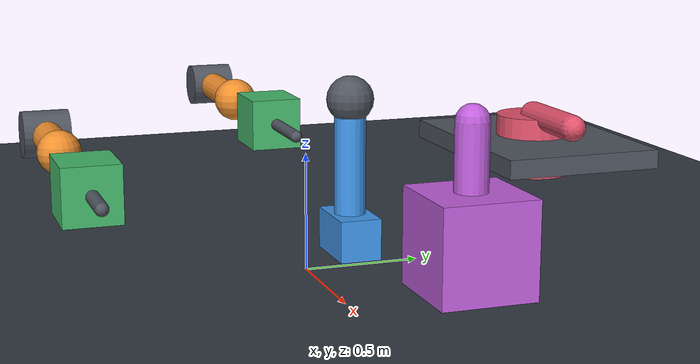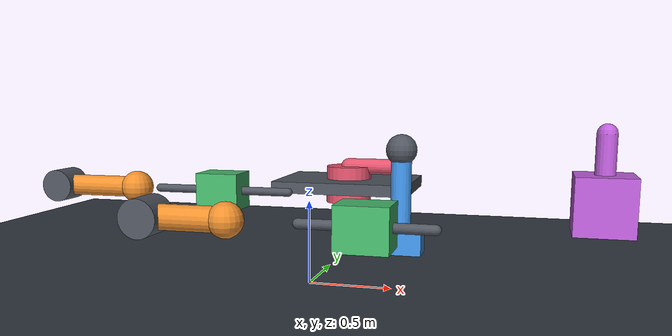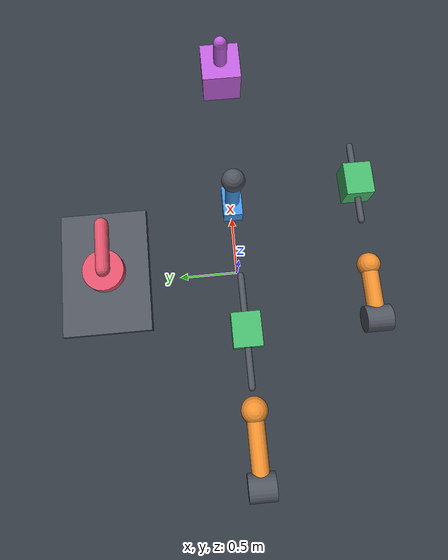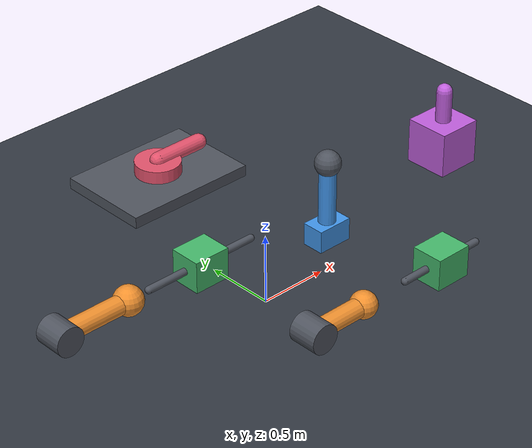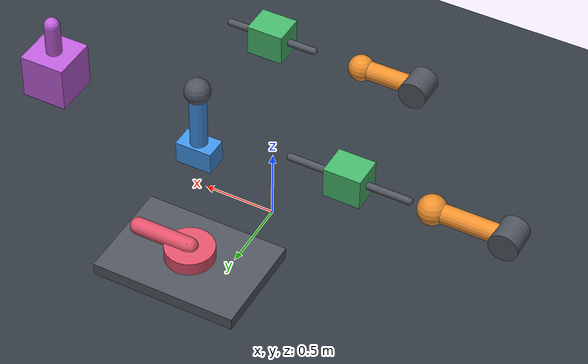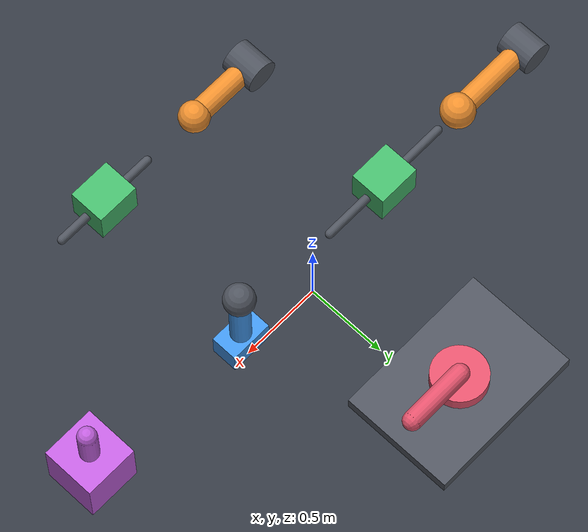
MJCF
<mujoco model="joint_gizmo_acceptance">
  <compiler angle="degree" autolimits="true"/>
  <option gravity="0 0 0"/>

  <visual>
    <headlight ambient="0.25 0.25 0.25" diffuse="0.55 0.55 0.55" specular="0.35 0.35 0.35"/>
    <quality shadowsize="2048" numslices="28" numstacks="16"/>
    <map znear="0.02" zfar="30"/>
  </visual>

  <asset>
    <texture name="floor_grid" type="2d" builtin="checker" width="512" height="512"
             rgb1="0.15 0.17 0.20" rgb2="0.24 0.27 0.31"/>
    <material name="floor_grid" texture="floor_grid" texrepeat="2 2" texuniform="true"/>
    <material name="anchor" rgba="0.31 0.33 0.37 1" specular="0.25" shininess="0.35"/>
    <material name="revolute" rgba="0.93 0.56 0.18 1" specular="0.45" shininess="0.55"/>
    <material name="prismatic" rgba="0.27 0.72 0.42 1" specular="0.45" shininess="0.55"/>
    <material name="ball" rgba="0.25 0.58 0.91 1" specular="0.45" shininess="0.55"/>
    <material name="free" rgba="0.75 0.37 0.86 1" specular="0.45" shininess="0.55"/>
    <material name="multi" rgba="0.88 0.32 0.42 1" specular="0.45" shininess="0.55"/>
  </asset>

  <worldbody>
    <light name="key" type="directional" pos="1 -3 6" dir="-0.15 0.35 -1"
           diffuse="0.75 0.75 0.75" specular="0.35 0.35 0.35" castshadow="true"/>
    <geom name="floor" type="plane" size="0 0 0.04" material="floor_grid"/>

    <!-- 01: select 01_revolute. Its one rotation axis must render as a full ring. -->
    <body name="01_revolute_anchor" pos="-1.65 0 0.55">
      <geom type="cylinder" size="0.10 0.10" euler="90 0 0" material="anchor"/>
      <body name="01_revolute">
        <joint name="01_revolute_y" type="hinge" axis="0 1 0" range="-120 120"/>
        <geom type="capsule" fromto="0 0 0 0.52 0 0" size="0.065" material="revolute"/>
        <geom type="sphere" pos="0.52 0 0" size="0.10" material="revolute"/>
      </body>
    </body>

    <!-- 02: select 02_prismatic. It exposes one arrow along the joint axis. -->
    <body name="02_prismatic_anchor" pos="-0.55 0 0.55">
      <geom type="capsule" fromto="-.42 0 0 .42 0 0" size="0.025" material="anchor"/>
      <body name="02_prismatic">
        <joint name="02_prismatic_x" type="slide" axis="1 0 0" range="-.34 .34"/>
        <geom type="box" size="0.13 0.11 0.11" material="prismatic"/>
      </body>
    </body>

    <!-- 03: select 03_ball. Its three overlapping axes retain front half-rings. -->
    <body name="03_ball_anchor" pos="0.55 0 0.82">
      <geom type="sphere" size="0.09" material="anchor"/>
      <body name="03_ball" pos="0 0 -0.22">
        <joint name="03_ball_xyz" type="ball"/>
        <geom type="capsule" fromto="0 0 .22 0 0 -.30" size="0.06" material="ball"/>
        <geom type="box" pos="0 0 -.30" size="0.13 0.08 0.08" material="ball"/>
      </body>
    </body>

    <!-- 04: select 04_free. It uses the regular translate/rotate transform gizmo. -->
    <body name="04_free" pos="1.65 0 0.55">
      <freejoint name="04_free_6dof"/>
      <geom type="box" size="0.16 0.16 0.16" material="free"/>
      <geom type="capsule" fromto="0 0 .16 0 0 .38" size="0.055" material="free"/>
    </body>

    <!-- 05: one body with three direct joints. Choose the active joint in the viewport picker. -->
    <body name="05_multi_anchor" pos="0 1.05 0.48">
      <geom type="box" size="0.48 0.34 0.04" material="anchor"/>
      <body name="05_multi_joint">
        <joint name="05_multi_slide_x" type="slide" axis="1 0 0" range="-.30 .30"/>
        <joint name="05_multi_slide_y" type="slide" axis="0 1 0" range="-.22 .22"/>
        <joint name="05_multi_revolute_z" type="hinge" axis="0 0 1" range="-100 100"/>
        <geom type="cylinder" size="0.16 0.13" material="multi"/>
        <geom type="capsule" fromto="0 0 .13 .36 0 .13" size="0.055" material="multi"/>
      </body>
    </body>

    <!-- 06/07: compact limits exercise the viewport precision rail after an endpoint dwell. -->
    <body name="06_precision_hinge_anchor" pos="-0.55 -1.0 0.55">
      <geom type="cylinder" size="0.10 0.10" euler="90 0 0" material="anchor"/>
      <body name="06_precision_hinge">
        <joint name="06_precision_hinge_y" type="hinge" axis="0 1 0" range="-2 2"/>
        <geom type="capsule" fromto="0 0 0 0.42 0 0" size="0.065" material="revolute"/>
        <geom type="sphere" pos="0.42 0 0" size="0.09" material="revolute"/>
      </body>
    </body>

    <body name="07_precision_slide_anchor" pos="0.55 -1.0 0.55">
      <geom type="capsule" fromto="-.32 0 0 .32 0 0" size="0.025" material="anchor"/>
      <body name="07_precision_slide">
        <joint name="07_precision_slide_x" type="slide" axis="1 0 0" range="-.005 .005"/>
        <geom type="box" size="0.13 0.11 0.11" material="prismatic"/>
      </body>
    </body>

    <camera name="joint_gizmos" pos="0 -4.1 2.55" xyaxes="1 0 0 0 0.53 0.85"/>
  </worldbody>
</mujoco>
